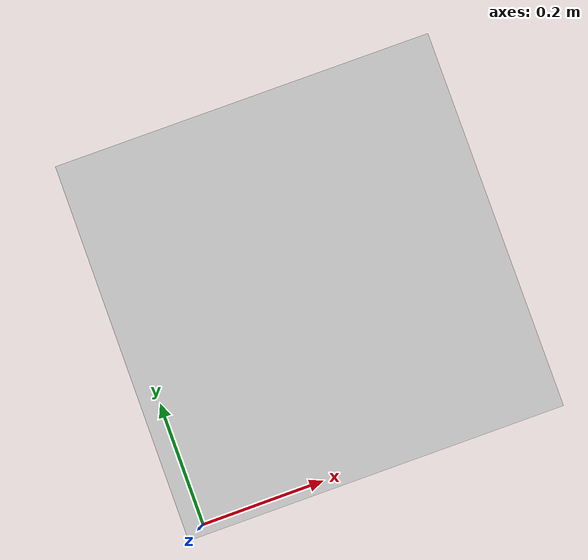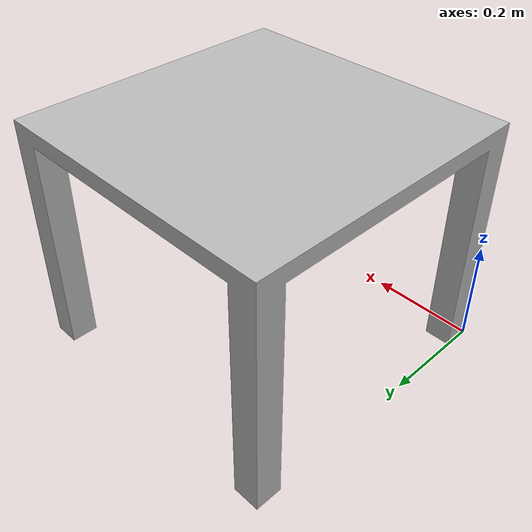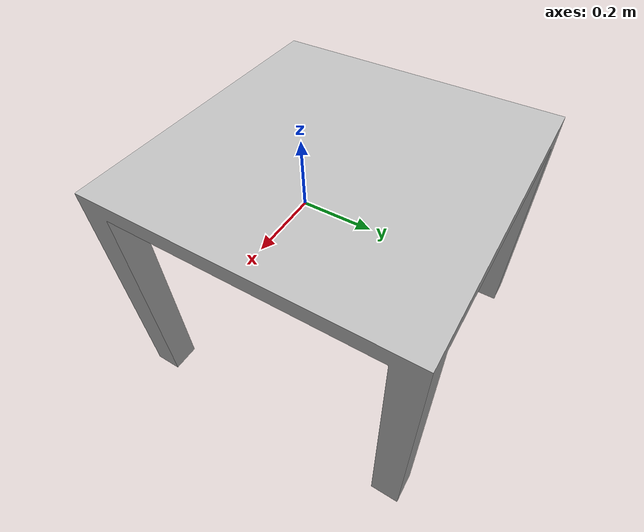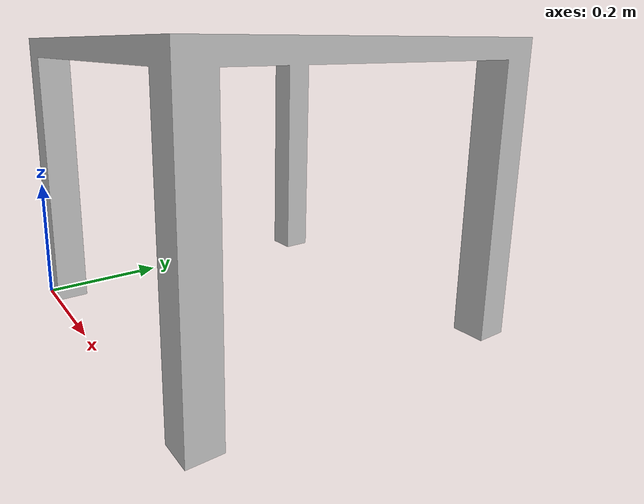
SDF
<?xml version="1.0"?>
<sdf version="1.4">
<model name="stolecek_maly">
	<pose>0 0 0 0 0 0</pose>
	<static>true</static>
	<link name="stolecek_maly_collision">
		<collision name="stolecek_maly_collision">
		<geometry>
			<mesh>
				<uri>model://stolecek_maly/meshes/model.dae</uri>

			</mesh>
		</geometry>
		</collision>
	<visual name="stolecek_maly_mesh">
	<cast_shadows>false</cast_shadows>
		<geometry>
			<mesh>
				<uri> model://stolecek_maly/meshes/model.dae</uri>

			</mesh>
		</geometry>
		<material>
		<script>
			<uri> model://stolecek_maly/material/scripts</uri>
			<uri> model://stolecek_maly/material/textures</uri>
			<name>stolecek_maly/Diffuse</name>
		</script>
		</material>

	</visual>
</link>
</model>
</sdf>
